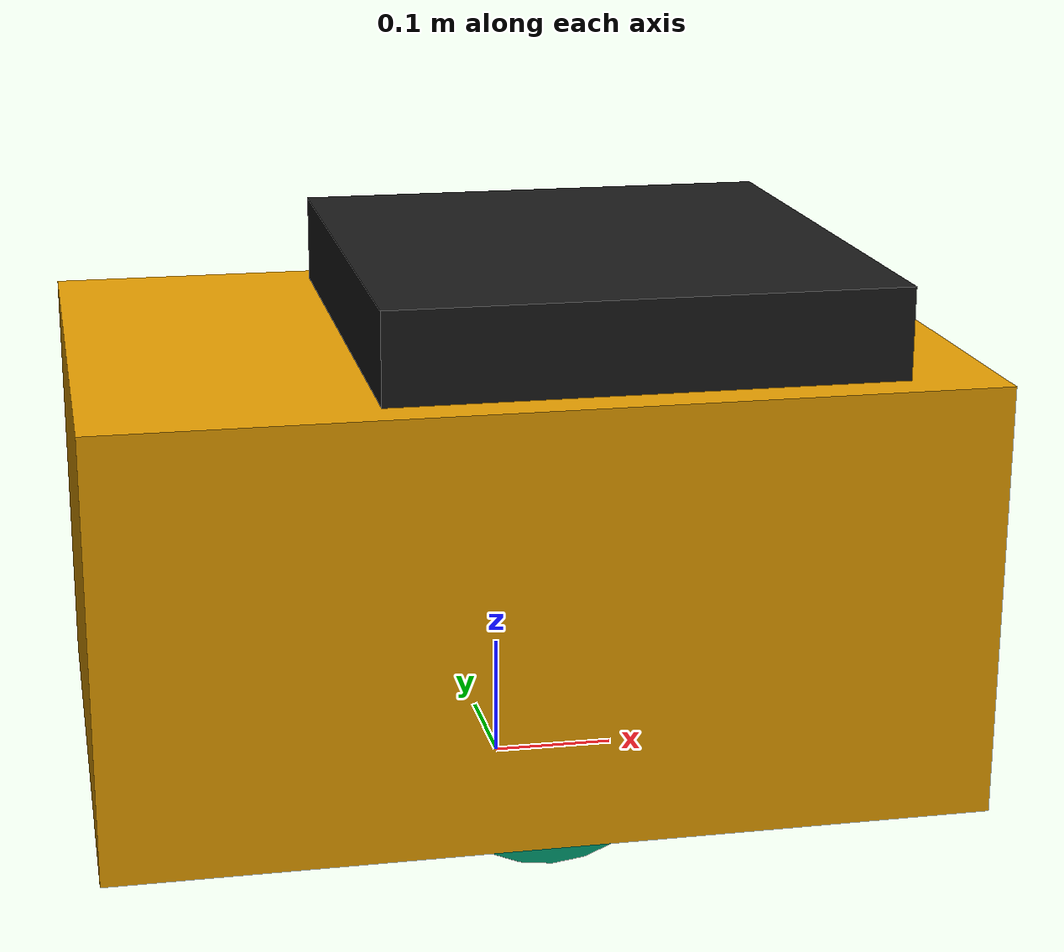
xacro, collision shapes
<?xml version="1.0"?>

<robot name="pioneer-lx" xmlns:xacro="http://ros.org/wiki/xacro">

  <link name="base_link">

    <!-- base_link origin point is center of rotation, on the floor. -->

    <inertial>
      <mass value="57.8" /> <!-- 60 kg minus each wheel -->
      <inertia ixx="1" ixy="0" ixz="0" iyy="1" iyz="0" izz="1" />
    </inertial>

    <visual>
      <geometry name="base_link_visual_geom">
        <mesh filename="package://p3dx_robots_description/meshes/pioneer-lx/pioneer-lx_visual.stl" scale="0.001 0.001 0.001" />
      </geometry>
      <origin xyz="0 0 0.0" rpy="0 0 1.570796" />
    </visual>

    <collision name="base_link_collision">
      <geometry name="base_link_collision_geom">
        <box size="0.7 0.5 0.35" />
      </geometry>
      <origin xyz="0 0 0.2" rpy="0 0 0" />
    </collision>

  </link>

  <!-- right wheel -->

  <link name="r_wheel">

    <inertial>
      <mass value="1.1" />   <!-- kg -->
      <inertia ixx="0.02" ixy="0" ixz="0" iyy="0.02" iyz="0" izz="0.01" />
    </inertial>

    <collision name="r_wheel_collision">
      <geometry name="r_wheel_collision_geom">
        <cylinder radius="0.100" length="0.05" />
      </geometry>
      <origin rpy="1.570796 0 0" />
    </collision>

  </link>

  <!-- left wheel -->

  <link name="l_wheel">

    <inertial>
      <mass value="1.1" />   <!-- kg -->
      <inertia ixx="0.02" ixy="0" ixz="0" iyy="0.02" iyz="0" izz="0.01" />
    </inertial>

    <collision name="l_wheel_collision">
      <geometry name="l_wheel_collision_geom">
        <cylinder radius="0.100" length="0.05" />
      </geometry>
      <origin rpy="1.570796 0 0" />
    </collision>

  </link>

  <!-- joints -->

  <joint name="r_wheel_joint" type="continuous">
    <origin xyz="0 0.2 0.1" rpy="0 0 0" />
    <parent link="base_link" />
    <child link="r_wheel" />
  </joint>

  <joint name="l_wheel_joint" type="continuous">
    <origin xyz="0 -0.2 0.1" rpy="0 0 0" />
    <parent link="base_link" />
    <child link="l_wheel" />
  </joint>

  <!-- pioneer lx deck -->
  <link name="deck">
    <visual>
      <geometry name="deck_visual_geom">
        <box size="0.407 0.437 0.076" />
      </geometry>
      <material name="lx_deck_mat">
        <color rgba="0.1 0.1 0.1 1" />
      </material>
    </visual>
    <collision name="deck_collision">
      <geometry name="deck_collision_geom">
        <box size="0.407 0.437 0.076" />
      </geometry>
    </collision>
  </link>

  <joint name="deck_joint" type="fixed">
    <origin xyz="0.075 0 0.410" rpy="0 0 0" />
    <parent link="base_link" />
    <child link="deck" />
  </joint>

  <gazebo>
    <plugin name="differential_drive_controller" filename="libgazebo_ros_diff_drive.so">
      <alwaysOn>true</alwaysOn>
      <updateRate>100</updateRate>
      <leftJoint>l_wheel_joint</leftJoint>
      <rightJoint>r_wheel_joint</rightJoint>
      <wheelSeparation>0.4</wheelSeparation>
      <wheelDiameter>0.2</wheelDiameter>
      <torque>5</torque>
      <!-- interface:position name="position_iface_0"/ -->
      <commandTopic>cmd_vel</commandTopic>
      <robotBaseFrame>base_link</robotBaseFrame>
      <odometryTopic>odom</odometryTopic>
      <odometryFrame>odom</odometryFrame>
    </plugin>

  <!-- TODO include P3D (ground truth) plugin -->

  </gazebo>

</robot>
